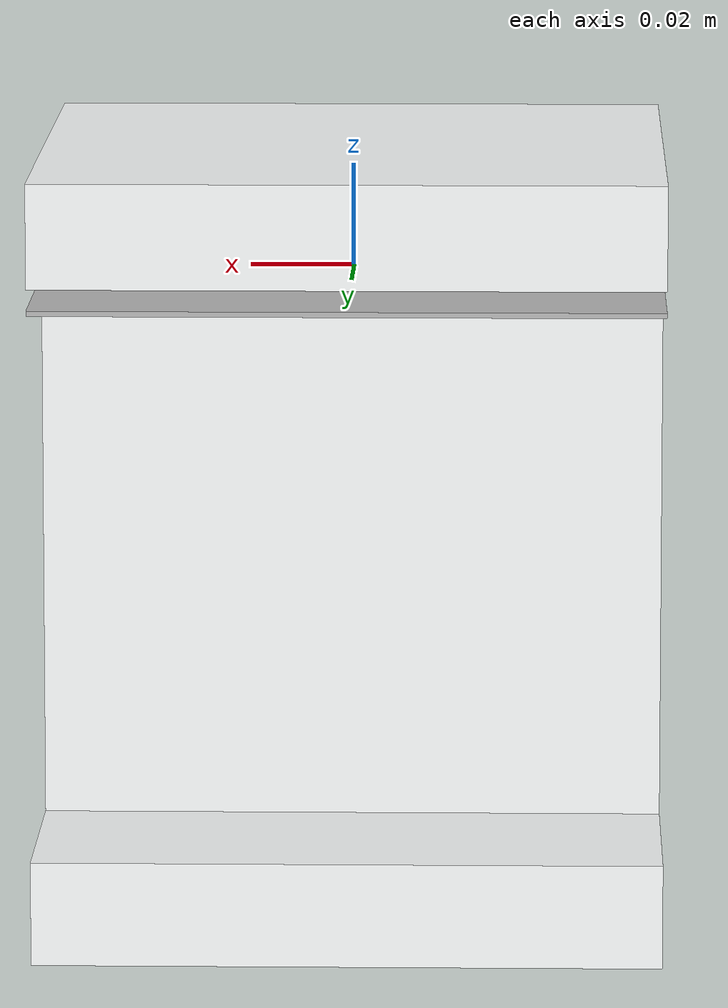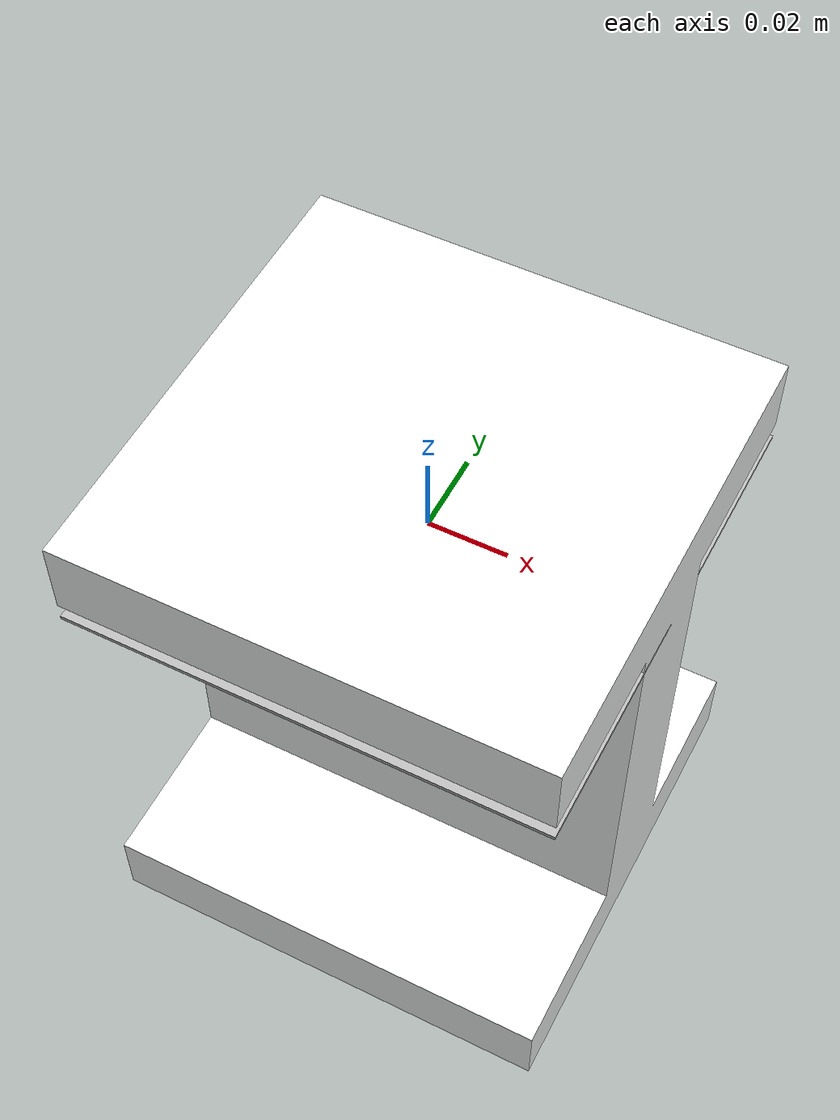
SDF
<sdf version='1.11'>
  <model name='cube_id_11'>
    <link name='cube_id_11/marker_link'>
      <inertial>
        <pose>-1.967726119402985e-18 -1.3878e-17 -0.047608208955223871 0 0 0</pose>
        <mass>0.21440000000000001</mass>
        <inertia>
          <ixx>0.001764538089552238</ixx>
          <ixy>2.844435e-19</ixy>
          <ixz>-9.7140436194029851e-20</ixz>
          <iyy>0.002007538089552239</iyy>
          <iyz>1.0072709999999999e-18</iyz>
          <izz>0.00169236</izz>
        </inertia>
      </inertial>
      <collision name='cube_id_11/marker_link_fixed_joint_lump__cube_id_11/cube_link_collision_1'>
        <pose>0 0 -0.050999999999999997 0 0 0</pose>
        <geometry>
          <mesh>
            <scale>1 1 1</scale>
            <uri>meshes/cube_link.STL</uri>
          </mesh>
        </geometry>
      </collision>
      <visual name='cube_id_11/marker_link_visual'>
        <pose>0 0 0 0 0 0</pose>
        <geometry>
          <mesh>
            <scale>1 1 1</scale>
            <uri>../markers/marker_11.dae</uri>
          </mesh>
        </geometry>
      </visual>
      <visual name='cube_id_11/marker_link_fixed_joint_lump__cube_id_11/cube_link_visual_1'>
        <pose>0 0 -0.050999999999999997 0 0 0</pose>
        <geometry>
          <mesh>
            <scale>1 1 1</scale>
            <uri>meshes/cube_link.STL</uri>
          </mesh>
        </geometry>
        <material>
          <diffuse>0.990199983 1 1 1</diffuse>
          <ambient>0.990199983 1 1 1</ambient>
        </material>
      </visual>
    </link>
    <frame name='cube_id_11/cube_joint' attached_to='cube_id_11/marker_link'>
      <pose>0 0 -0.050999999999999997 0 0 0</pose>
    </frame>
    <frame name='cube_id_11/cube_link' attached_to='cube_id_11/cube_joint'>
      <pose>0 0 0 0 0 0</pose>
    </frame>
  </model>
</sdf>
